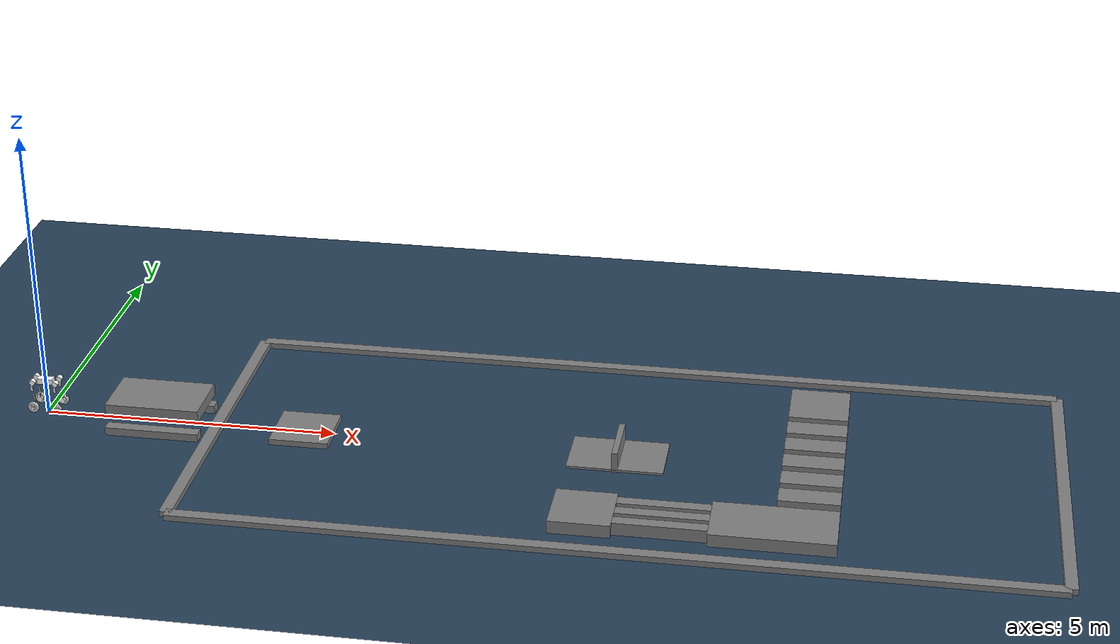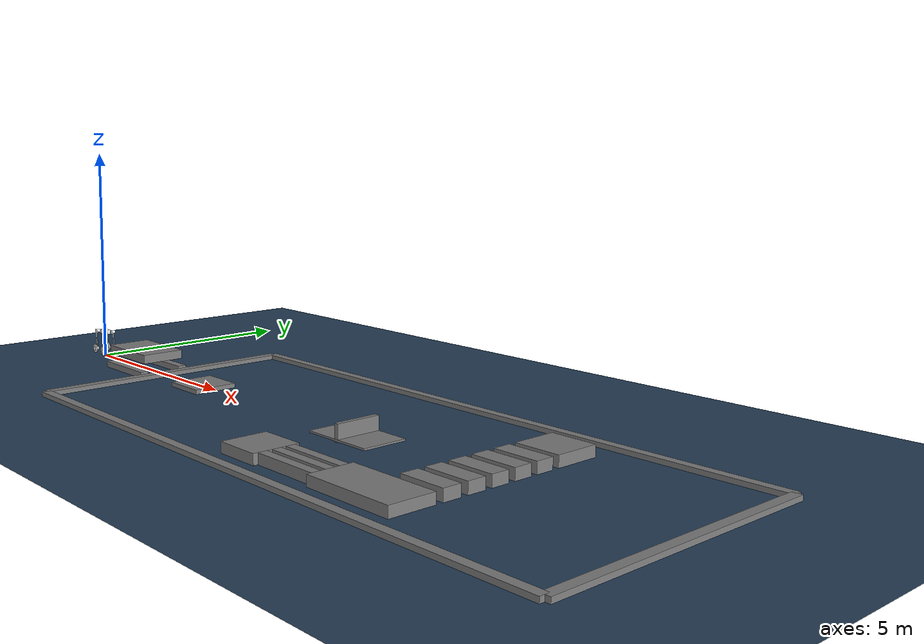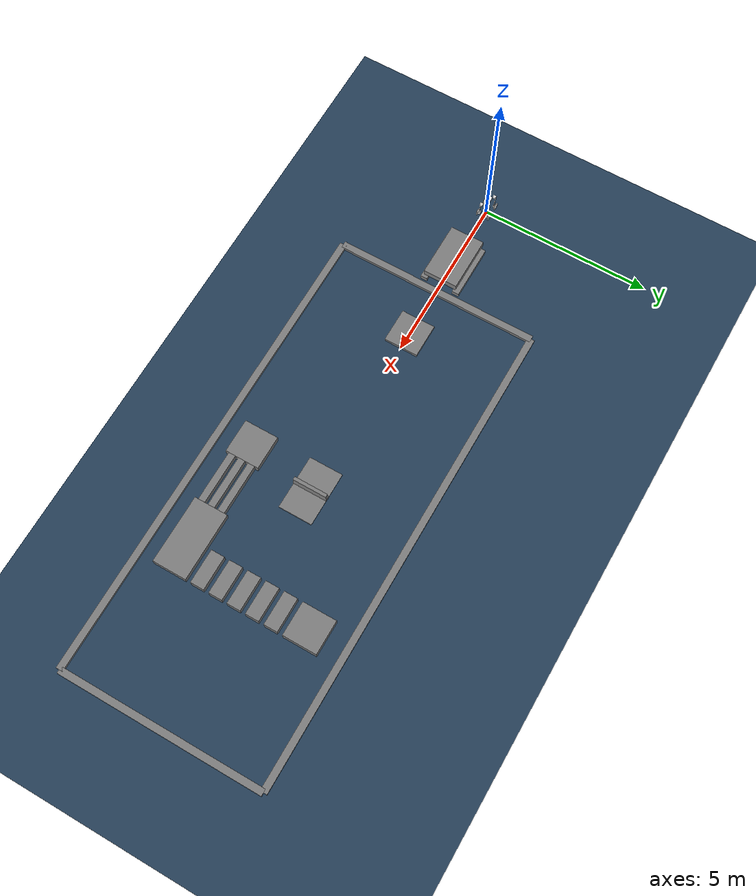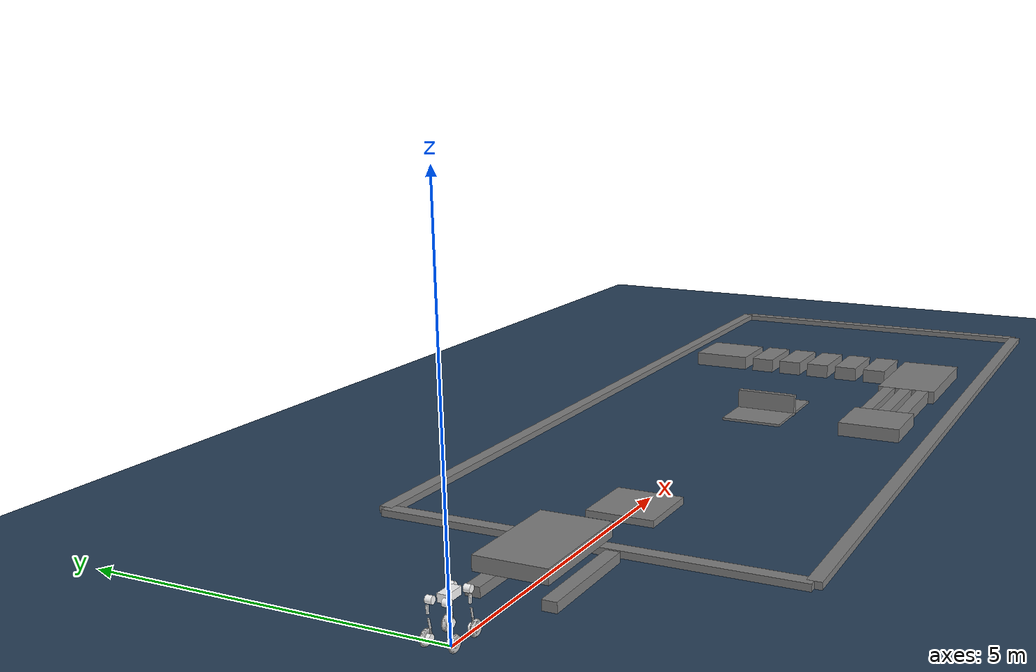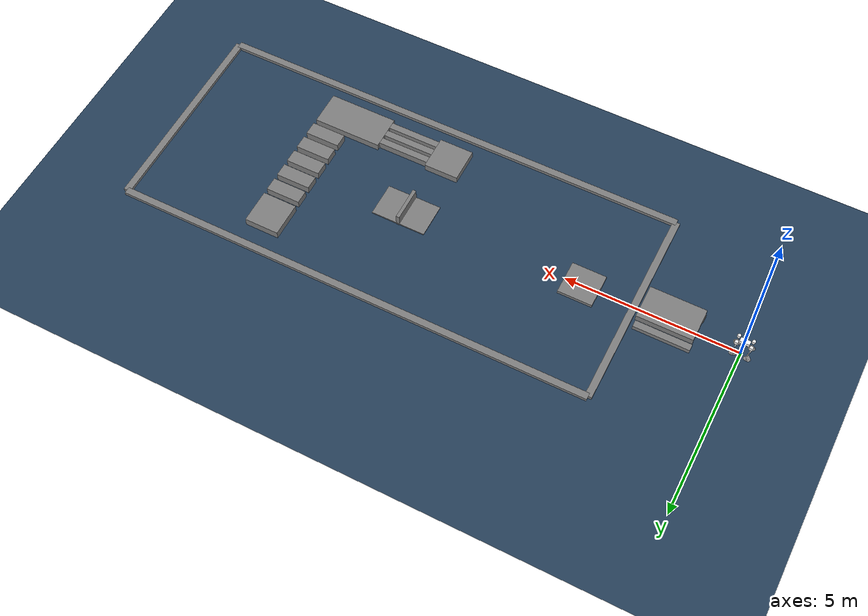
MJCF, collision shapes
<mujoco model="go2w scene">
  <include file="wheel_dog2.xml"/>

  <statistic center="0 0 0.1" extent="0.8"/>

  <visual>
    <headlight diffuse="0.6 0.6 0.6" ambient="0.3 0.3 0.3" specular="0 0 0"/>
    <rgba haze="0.15 0.25 0.35 1"/>
    <global azimuth="-130" elevation="-20"/>
  </visual>

  <asset>
    <texture type="skybox" builtin="gradient" rgb1="0.3 0.5 0.7" rgb2="0 0 0" width="512" height="3072"/>
    <texture type="2d" name="groundplane" builtin="checker" mark="edge" rgb1="0.2 0.3 0.4" rgb2="0.1 0.2 0.3"
      markrgb="0.8 0.8 0.8" width="300" height="300"/>
    <material name="groundplane" texture="groundplane" texuniform="true" texrepeat="5 5" reflectance="0.2"/>
  </asset>

  <worldbody>
    <light pos="0 0 1.5" dir="0 0 -1" directional="true"/>
    <geom name="floor" size="0 0 0.05" type="plane" material="groundplane"/>

    <geom pos="2 0.5 0.02" type="box"  size="0.8 0.1 0.1" quat="1.0 0 0 0"/>
    <geom pos="2 0 0.4" type="box"  size="0.8 0.5 0.1" quat="1.0 0 0 0"/>
    <geom pos="2 -0.5 0.02" type="box"  size="0.8 0.1 0.1" quat="1.0 0 0 0"/>
        <geom pos="10 3 0.04" type="box"  size=" 7 0.1 0.05" quat="1.0 0 0 0"/>
    <geom pos="10 -3 0.04" type="box"  size=" 7 0.1 0.05" quat="1.0 0 0 0"/>
    <geom pos="3 0 0.04" type="box"  size=" 0.1 3 0.05" quat="1.0 0 0 0"/>
    <geom pos="17 0 0.04" type="box"  size=" 0.1 3 0.05" quat="1.0 0 0 0"/>
    <!--启动区 -->
    <geom pos="4.5 0 0.04" type="box"  size=" 0.5 0.5 0.05" quat="1.0 0 0 0"/>
    <!-- 斜坡 -->
    <geom pos="9.5 -2 0" type="box"  size=" 0.5 0.5 0.2" quat="1.0 0 0 0"/>
    <geom pos="10.75 -1.7 0" type="box"  size=" 0.75 0.1 0.2" quat="1.0 0 0 0"/>
    <geom pos="10.75 -2 0" type="box"  size=" 0.75 0.1 0.2" quat="1.0 0 0 0"/>
    <geom pos="10.75 -2.3 0" type="box"  size=" 0.75 0.1 0.2" quat="1.0 0 0 0"/>
    <geom pos="12.5 -2 0" type="box"  size=" 1 0.5 0.2" quat="1.0 0 0 0"/>

    <geom pos="13 -1.15 0.02" type="box"  size="0.5 0.2 0.2" quat="1.0 0 0 0"/>
    <geom pos="13 -0.6 0.02" type="box"  size="0.5 0.2 0.2" quat="1.0 0 0 0"/>
    <geom pos="13 -0.05 0.02" type="box"  size="0.5 0.2 0.2" quat="1.0 0 0 0"/>
    <geom pos="13 0.5 0.02" type="box"  size="0.5 0.2 0.2" quat="1.0 0 0 0"/>
    <geom pos="13 1.05 0.02" type="box"  size="0.5 0.2 0.2" quat="1.0 0 0 0"/>

    <geom pos="13 1.9 0.02" type="box"  size="0.5 0.5 0.2" quat="1.0 0 0 0"/>
        <!-- 高墙 -->
    <geom pos="9.8 0 0.02" type="box"  size="0.8 0.5 0.02" quat="1.0 0 0 0"/>
    <geom pos="9.8 0 0.02" type="box"  size="0.05 0.5 0.32" quat="1.0 0 0 0"/>
  </worldbody>
</mujoco>

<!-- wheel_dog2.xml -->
<mujoco model="wheel_dog2">
  <compiler angle="radian" meshdir="assets" autolimits="true" />

  <size njmax="500" nconmax="100" />
  <option cone="elliptic" impratio="100" />

  <default>
    <default class="go2">
      <geom friction="0.4" margin="0.001" condim="1" />
      <joint axis="0 1 0" damping="0.1" armature="0.01" frictionloss="0.2" />
      <motor ctrlrange="-23.7 23.7" />
      <default class="abduction">
        <joint axis="1 0 0" range="-1 1" />
      </default>
      <default class="hip">
        <default class="front_hip">
        <joint range="-1.5 2.5" />
        </default>
        <default class="back_hip">
          <joint range="-0.5236 4.5379" />
        </default>
      </default>
      <default class="knee">
        <joint range="-2.5 -0.8" />
        <motor ctrlrange="-45.43 45.43" />
      </default>
      <default class="visual">
        <geom type="mesh" contype="0" conaffinity="0" group="2" />
      </default>
      <default class="collision">
        <geom group="3" />
        <default class="foot">
          <geom size="0.022" pos="-0.002 0 -0.2264" priority="1" condim="6"
            friction="0.8 0.02 0.01" />
        </default>
      </default>
    </default>
  </default>

  <asset>
    <mesh name="base" file="base.STL" />
    <mesh name="FL_hip" file="FL_hip.STL" />
    <mesh name="FL_thigh" file="FL_thigh.STL" />
    <mesh name="FL_calf" file="FL_calf.STL" />
    <mesh name="FL_foot_motor" file="FL_foot_motor.STL" />
    <mesh name="FL_foot" file="FL_foot.STL" />
    <mesh name="FR_hip" file="FR_hip.STL" />
    <mesh name="FR_thigh" file="FR_thigh.STL" />
    <mesh name="FR_calf" file="FR_calf.STL" />
    <mesh name="FR_foot_motor" file="FR_foot_motor.STL" />
    <mesh name="FR_foot" file="FR_foot.STL" />
    <mesh name="RL_hip" file="RL_hip.STL" />
    <mesh name="RL_thigh" file="RL_thigh.STL" />
    <mesh name="RL_calf" file="RL_calf.STL" />
    <mesh name="RL_foot_motor" file="RL_foot_motor.STL" />
    <mesh name="RL_foot" file="RL_foot.STL" />
    <mesh name="RR_hip" file="RR_hip.STL" />
    <mesh name="RR_thigh" file="RR_thigh.STL" />
    <mesh name="RR_calf" file="RR_calf.STL" />
    <mesh name="RR_foot_motor" file="RR_foot_motor.STL" />
    <mesh name="RR_foot" file="RR_foot.STL" />
  </asset>

  <worldbody>
    <body name="base_link" pos="0 0 0.6" childclass="go2">
      <freejoint />

      <geom type="mesh" contype="0" conaffinity="0" group="1" density="0" rgba="1 1 1 1" mesh="base" />
      <geom size="0.135 0.063 0.05" type="box" rgba="1 1 1 1" />
      <site name="imu" pos="0 0 0" />

      <body name="FL_hip" pos="0.138 0.063 0">
        <inertial pos="0.0544564 -0.012223 -3.33186e-05" quat="0.48755 0.523329 0.477681 0.510139" mass="0.729266" diaginertia="0.000973667 0.000664566 0.000539767" />
        <joint name="FL_hip_joint" pos="0 0 0" axis="1 0 0" range="-1 1" actuatorfrcrange="-20 20" />
        <geom type="mesh" contype="0" conaffinity="0" group="1" density="0" rgba="1 1 1 1" mesh="FL_hip" />
        <geom size="0.046 0.04" pos="0.064 0.04 0" quat="0.707107 0.707107 0 0" type="cylinder" rgba="1 1 1 1" />
        <body name="FL_thigh" pos="0.064 0.0673 0">
          <inertial pos="-0.00209131 -0.0157512 -0.0357313" quat="0.708157 0.088053 -0.0563058 0.698276" mass="1.00589" diaginertia="0.00478391 0.00446675 0.000796341" />
          <joint name="FL_thigh_joint" pos="0 0 0" axis="0 1 0" range="-1.5 2.5" actuatorfrcrange="-20 20" />
          <geom type="mesh" contype="0" conaffinity="0" group="1" density="0" rgba="1 1 1 1" mesh="FL_thigh" />
          <geom size="0.05 0.01 0.015" pos="-0.015 0 -0.11" quat="0.707107 0 0.707107 0" type="box" rgba="1 1 1 1" />
          <body name="FL_calf" pos="0 0 -0.213">
            <inertial pos="0.00443998 4.56788e-05 -0.181418" quat="0.706944 0.0138593 0.0137442 0.707" mass="0.889504" diaginertia="0.00554436 0.00518748 0.000509097" />
            <joint name="FL_calf_joint" pos="0 0 0" axis="0 1 0" range="-2.5 -0.8" actuatorfrcrange="-20 20" />
            <geom type="mesh" contype="0" conaffinity="0" group="1" density="0" rgba="0.752941 0.752941 0.752941 1" mesh="FL_calf" />
            <geom size="0.012 0.06" pos="0.008 0 -0.06" quat="0.994493 0 -0.104807 0" type="cylinder" rgba="0.752941 0.752941 0.752941 1" />
            <geom size="0.011 0.0325" pos="0.02 0 -0.148" quat="0.999688 0 0.0249974 0" type="cylinder" />
            <geom size="0.0155 0.015" pos="0.00801333 0 -0.18745" quat="0.965093 0 0.261909 0" type="cylinder" />
            <geom type="mesh" contype="0" conaffinity="0" group="1" density="0" rgba="1 1 1 1" mesh="FL_foot_motor" />
            <geom size="0.05 0.025" pos="0 0 -0.2264" quat="0.707107 0.707107 0 0" type="cylinder" rgba="1 1 1 1" />
            <body name="FL_foot" pos="0 0 -0.226">
              <inertial pos="9.25955e-06 0.0433518 -8.54889e-05" quat="0.707107 0 0 0.707107" mass="0.54" diaginertia="0.002112 0.001185 0.001185" />
              <joint name="FL_foot_joint" pos="0 0 0" axis="0 1 0" actuatorfrcrange="-20 20" />
              <geom type="mesh" contype="0" conaffinity="0" group="1" density="0" rgba="0.752941 0.752941 0.752941 1" mesh="FL_foot" />
              <geom type="mesh" rgba="0.752941 0.752941 0.752941 1" mesh="FL_foot" />
            </body>
          </body>
        </body>
      </body>

      <body name="FR_hip" pos="0.138 -0.063 0">
        <inertial pos="0.0544564 0.012223 3.33186e-05" quat="0.493614 0.493614 0.506305 0.506305" mass="0.72926" diaginertia="0.000973279 0.000664 0.000539721" />
        <joint name="FR_hip_joint" pos="0 0 0" axis="1 0 0" range="-1 1" actuatorfrcrange="-20 20" />
        <geom type="mesh" contype="0" conaffinity="0" group="1" density="0" rgba="1 1 1 1" mesh="FR_hip" />
        <geom size="0.046 0.04" pos="0.064 -0.04 0" quat="0.707107 0.707107 0 0" type="cylinder" rgba="1 1 1 1" />
        <body name="FR_thigh" pos="0.064 -0.0673 0">
          <inertial pos="-0.00179872 0.0157557 -0.0361369" quat="0.705452 -0.0323703 0.061048 0.705381" mass="1.02069" diaginertia="0.00492032 0.00459719 0.000814487" />
          <joint name="FR_thigh_joint" pos="0 0 0" axis="0 1 0" range="-1.5 2.5" actuatorfrcrange="-20 20" />
          <geom type="mesh" contype="0" conaffinity="0" group="1" density="0" rgba="1 1 1 1" mesh="FR_thigh" />
          <geom size="0.05 0.01 0.015" pos="-0.015 0 -0.11" quat="0.707107 0 0.707107 0" type="box" rgba="1 1 1 1" />
          <body name="FR_calf" pos="0 0 -0.213">
            <inertial pos="0.00450324 -4.5692e-05 -0.181444" quat="0.707003 0.0135557 0.0136706 0.706948" mass="0.889504" diaginertia="0.00554593 0.00518937 0.000508783" />
            <joint name="FR_calf_joint" pos="0 0 0" axis="0 1 0" range="-2.5 -0.8" actuatorfrcrange="-20 20" />
            <geom type="mesh" contype="0" conaffinity="0" group="1" density="0" rgba="0.752941 0.752941 0.752941 1" mesh="FR_calf" />
            <geom size="0.012 0.06" pos="0.008 0 -0.06" quat="0.994493 0 -0.104807 0" type="cylinder" rgba="0.752941 0.752941 0.752941 1" />
            <geom size="0.011 0.0325" pos="0.02 0 -0.148" quat="0.999688 0 0.0249974 0" type="cylinder" />
            <geom size="0.0155 0.015" pos="0.00801333 0 -0.18745" quat="0.965093 0 0.261909 0" type="cylinder" />
            <geom type="mesh" contype="0" conaffinity="0" group="1" density="0" rgba="1 1 1 1" mesh="FR_foot_motor" />
            <geom size="0.05 0.025" pos="0 0 -0.2264" quat="0.707107 0.707107 0 0" type="cylinder" rgba="1 1 1 1" />
            <body name="FR_foot" pos="0 -0.0365 -0.226">
              <inertial pos="-2.87493e-07 -0.00685222 -8.59602e-05" quat="0.707107 0 0 0.707107" mass="0.54" diaginertia="0.002112 0.001185 0.001185" />
              <joint name="FR_foot_joint" pos="0 0 0" axis="0 1 0" actuatorfrcrange="-20 20" />
              <geom type="mesh" contype="0" conaffinity="0" group="1" density="0" rgba="0.752941 0.752941 0.752941 1" mesh="FR_foot" />
              <geom type="mesh" rgba="0.752941 0.752941 0.752941 1" mesh="FR_foot" />
            </body>
          </body>
        </body>
      </body>

      <body name="RL_hip" pos="-0.136 0.063 0">
        <inertial pos="-0.0544564 -0.012223 3.33186e-05" quat="0.492745 0.494482 0.505559 0.507051" mass="0.729266" diaginertia="0.000973282 0.000663997 0.000539721" />
        <joint name="RL_hip_joint" pos="0 0 0" axis="1 0 0" range="-1 1" actuatorfrcrange="-20 20" />
        <geom type="mesh" contype="0" conaffinity="0" group="1" density="0" rgba="1 1 1 1" mesh="RL_hip" />
        <geom size="0.046 0.04" pos="-0.064 0.04 0" quat="0.707107 0.707107 0 0" type="cylinder" rgba="1 1 1 1" />
        <body name="RL_thigh" pos="-0.064 0.0673 0">
          <inertial pos="-0.00209131 -0.0157512 -0.0357313" quat="0.711046 0.0625847 -0.0312494 0.699657" mass="1.00589" diaginertia="0.00478432 0.00446672 0.000795967" />
          <joint name="RL_thigh_joint" pos="0 0 0" axis="0 1 0" range="-1.5 2.5" actuatorfrcrange="-20 20" />
          <geom type="mesh" contype="0" conaffinity="0" group="1" density="0" rgba="1 1 1 1" mesh="RL_thigh" />
          <geom size="0.05 0.01 0.015" pos="-0.015 0 -0.11" quat="0.707107 0 0.707107 0" type="box" rgba="1 1 1 1" />
          <body name="RL_calf" pos="0 0 -0.213">
            <inertial pos="0.00443998 4.56788e-05 -0.181418" quat="0.705954 0.013876 0.0137277 0.707989" mass="0.889504" diaginertia="0.00554436 0.00518747 0.000509097" />
            <joint name="RL_calf_joint" pos="0 0 0" axis="0 1 0" range="-2.5 -0.8" actuatorfrcrange="-20 20" />
            <geom type="mesh" contype="0" conaffinity="0" group="1" density="0" rgba="0.752941 0.752941 0.752941 1" mesh="RL_calf" />
            <geom size="0.013 0.06" pos="0.008 0 -0.06" quat="0.994493 0 -0.104807 0" type="cylinder" rgba="0.752941 0.752941 0.752941 1" />
            <geom size="0.011 0.0325" pos="0.02 0 -0.148" quat="0.999688 0 0.0249974 0" type="cylinder" />
            <geom size="0.0155 0.015" pos="0.00801333 0 -0.18745" quat="0.965093 0 0.261909 0" type="cylinder" />
            <geom type="mesh" contype="0" conaffinity="0" group="1" density="0" rgba="1 1 1 1" mesh="RL_foot_motor" />
            <geom size="0.05 0.025" pos="0 0 -0.2264" quat="0.707107 0.707107 0 0" type="cylinder" rgba="1 1 1 1" />
            <body name="RL_foot" pos="0 0.0365 -0.226">
              <inertial pos="-7.22376e-05 0.0068524 -4.73929e-05" quat="0.707107 0 0 0.707107" mass="0.54" diaginertia="0.002112 0.001185 0.001185" />
              <joint name="RL_foot_joint" pos="0 0 0" axis="0 1 0" actuatorfrcrange="-20 20" />
              <geom type="mesh" contype="0" conaffinity="0" group="1" density="0" rgba="0.752941 0.752941 0.752941 1" mesh="RL_foot" />
              <geom type="mesh" rgba="0.752941 0.752941 0.752941 1" mesh="RL_foot" />
            </body>
          </body>
        </body>
      </body>

      <body name="RR_hip" pos="-0.136 -0.063 0">
        <inertial pos="-0.0544564 0.012223 -3.33186e-05" quat="0.48755 0.523329 0.477681 0.510139" mass="0.729266" diaginertia="0.000973667 0.000664566 0.000539767" />
        <joint name="RR_hip_joint" pos="0 0 0" axis="1 0 0" range="-1 1" actuatorfrcrange="-20 20" />
        <geom type="mesh" contype="0" conaffinity="0" group="1" density="0" rgba="1 1 1 1" mesh="RR_hip" />
        <geom size="0.046 0.04" pos="-0.064 -0.04 0" quat="0.707107 0.707107 0 0" type="cylinder" rgba="1 1 1 1" />
        <body name="RR_thigh" pos="-0.064 -0.0673 0">
          <inertial pos="-0.00179872 0.0157557 -0.0361369" quat="0.705378 -0.0324105 0.0610056 0.705457" mass="1.02069" diaginertia="0.00492032 0.00459715 0.000814527" />
          <joint name="RR_thigh_joint" pos="0 0 0" axis="0 1 0" range="-1.5 2.5" actuatorfrcrange="-20 20" />
          <geom type="mesh" contype="0" conaffinity="0" group="1" density="0" rgba="1 1 1 1" mesh="RR_thigh" />
          <geom size="0.05 0.01 0.015" pos="-0.015 0 -0.11" quat="0.707107 0 0.707107 0" type="box" rgba="1 1 1 1" />
          <body name="RR_calf" pos="0 0 -0.213">
            <inertial pos="0.00450324 -4.5692e-05 -0.181444" quat="0.707003 0.0135557 0.0136706 0.706948" mass="0.889504" diaginertia="0.00554593 0.00518937 0.000508783" />
            <joint name="RR_calf_joint" pos="0 0 0" axis="0 1 0" range="-2.5 -0.8" actuatorfrcrange="-20 20" />
            <geom type="mesh" contype="0" conaffinity="0" group="1" density="0" rgba="0.752941 0.752941 0.752941 1" mesh="RR_calf" />
            <geom size="0.012 0.06" pos="0.008 0 -0.06" quat="0.994493 0 -0.104807 0" type="cylinder" rgba="0.752941 0.752941 0.752941 1" />
            <geom size="0.011 0.0325" pos="0.02 0 -0.148" quat="0.999688 0 0.0249974 0" type="cylinder" />
            <geom size="0.0155 0.015" pos="0.00801333 0 -0.18745" quat="0.965093 0 0.261909 0" type="cylinder" />
            <geom type="mesh" contype="0" conaffinity="0" group="1" density="0" rgba="1 1 1 1" mesh="RR_foot_motor" />
            <geom size="0.05 0.025" pos="0 0 -0.2264" quat="0.707107 0.707107 0 0" type="cylinder" rgba="1 1 1 1" />
            <body name="RR_foot" pos="0 0 -0.226">
              <inertial pos="-1.4739e-05 -0.0433523 -8.4682e-05" quat="0.707107 0 0 0.707107" mass="0.54" diaginertia="0.002112 0.001185 0.001185" />
              <joint name="RR_foot_joint" pos="0 0 0" axis="0 1 0" actuatorfrcrange="-20 20" />
              <geom type="mesh" contype="0" conaffinity="0" group="1" density="0" rgba="0.752941 0.752941 0.752941 1" mesh="RR_foot" />
              <geom type="mesh" rgba="0.752941 0.752941 0.752941 1" mesh="RR_foot" />
            </body>
          </body>
        </body>
      </body>
    </body>
  </worldbody>

  <actuator>
    <motor class="abduction" name="FL_hip" joint="FL_hip_joint" />
    <motor class="hip" name="FL_thigh" joint="FL_thigh_joint" />
    <motor class="knee" name="FL_calf" joint="FL_calf_joint" />
    <motor ctrlrange="-15 15" name="FL_foot" joint="FL_foot_joint" />

    <motor class="abduction" name="FR_hip" joint="FR_hip_joint" />
    <motor class="hip" name="FR_thigh" joint="FR_thigh_joint" />
    <motor class="knee" name="FR_calf" joint="FR_calf_joint" />
    <motor ctrlrange="-15 15" name="FR_foot" joint="FR_foot_joint" />

    <motor class="abduction" name="RL_hip" joint="RL_hip_joint" />
    <motor class="hip" name="RL_thigh" joint="RL_thigh_joint" />
    <motor class="knee" name="RL_calf" joint="RL_calf_joint" />
    <motor ctrlrange="-15 15" name="RL_foot" joint="RL_foot_joint" />

    <motor class="abduction" name="RR_hip" joint="RR_hip_joint" />
    <motor class="hip" name="RR_thigh" joint="RR_thigh_joint" />
    <motor class="knee" name="RR_calf" joint="RR_calf_joint" />
    <motor ctrlrange="-15 15" name="RR_foot" joint="RR_foot_joint" />
  </actuator>

  <sensor>
    <jointpos name="FR_hip_pos" joint="FR_hip_joint" />
    <jointpos name="FR_thigh_pos" joint="FR_thigh_joint" />
    <jointpos name="FR_calf_pos" joint="FR_calf_joint" />

    <jointpos name="FL_hip_pos" joint="FL_hip_joint" />
    <jointpos name="FL_thigh_pos" joint="FL_thigh_joint" />
    <jointpos name="FL_calf_pos" joint="FL_calf_joint" />

    <jointpos name="RR_hip_pos" joint="RR_hip_joint" />
    <jointpos name="RR_thigh_pos" joint="RR_thigh_joint" />
    <jointpos name="RR_calf_pos" joint="RR_calf_joint" />

    <jointpos name="RL_hip_pos" joint="RL_hip_joint" />
    <jointpos name="RL_thigh_pos" joint="RL_thigh_joint" />
    <jointpos name="RL_calf_pos" joint="RL_calf_joint" />

    <jointpos name="FR_foot_pos" joint="FR_foot_joint" />
    <jointpos name="FL_foot_pos" joint="FL_foot_joint" />
    <jointpos name="RR_foot_pos" joint="RR_foot_joint" />
    <jointpos name="RL_foot_pos" joint="RL_foot_joint" />

    <jointvel name="FR_hip_vel" joint="FR_hip_joint" />
    <jointvel name="FR_thigh_vel" joint="FR_thigh_joint" />
    <jointvel name="FR_calf_vel" joint="FR_calf_joint" />
    <jointvel name="FL_hip_vel" joint="FL_hip_joint" />
    <jointvel name="FL_thigh_vel" joint="FL_thigh_joint" />
    <jointvel name="FL_calf_vel" joint="FL_calf_joint" />
    <jointvel name="RR_hip_vel" joint="RR_hip_joint" />
    <jointvel name="RR_thigh_vel" joint="RR_thigh_joint" />
    <jointvel name="RR_calf_vel" joint="RR_calf_joint" />
    <jointvel name="RL_hip_vel" joint="RL_hip_joint" />
    <jointvel name="RL_thigh_vel" joint="RL_thigh_joint" />
    <jointvel name="RL_calf_vel" joint="RL_calf_joint" />

    <jointvel name="FR_foot_vel" joint="FR_foot_joint" noise="0.0" />
    <jointvel name="FL_foot_vel" joint="FL_foot_joint" noise="0.0" />
    <jointvel name="RR_foot_vel" joint="RR_foot_joint" noise="0.0" />
    <jointvel name="RL_foot_vel" joint="RL_foot_joint" noise="0.0" />

    <jointactuatorfrc name="FR_hip_torque" joint="FR_hip_joint" noise="0.01" />
    <jointactuatorfrc name="FR_thigh_torque" joint="FR_thigh_joint" noise="0.01" />
    <jointactuatorfrc name="FR_calf_torque" joint="FR_calf_joint" noise="0.01" />
    <jointactuatorfrc name="FL_hip_torque" joint="FL_hip_joint" noise="0.01" />
    <jointactuatorfrc name="FL_thigh_torque" joint="FL_thigh_joint" noise="0.01" />
    <jointactuatorfrc name="FL_calf_torque" joint="FL_calf_joint" noise="0.01" />
    <jointactuatorfrc name="RR_hip_torque" joint="RR_hip_joint" noise="0.01" />
    <jointactuatorfrc name="RR_thigh_torque" joint="RR_thigh_joint" noise="0.01" />
    <jointactuatorfrc name="RR_calf_torque" joint="RR_calf_joint" noise="0.01" />
    <jointactuatorfrc name="RL_hip_torque" joint="RL_hip_joint" noise="0.01" />
    <jointactuatorfrc name="RL_thigh_torque" joint="RL_thigh_joint" noise="0.01" />
    <jointactuatorfrc name="RL_calf_torque" joint="RL_calf_joint" noise="0.01" />

    <jointactuatorfrc name="FR_foot_torque" joint="FR_foot_joint" />
    <jointactuatorfrc name="FL_foot_torque" joint="FL_foot_joint" />
    <jointactuatorfrc name="RR_foot_torque" joint="RR_foot_joint" />
    <jointactuatorfrc name="RL_foot_torque" joint="RL_foot_joint" />

    <framequat name="orientation" objtype="site" objname="imu" noise="0.0" />
    <framelinvel name="base_lin_vel" objtype="site" objname="imu" />
    <gyro name="angular-velocity" site="imu" noise="0.0" />
    <accelerometer name="linear-acceleration" site="imu" />

    <framepos name="frame_pos" objtype="site" objname="imu" />
    <framelinvel name="frame_vel" objtype="site" objname="imu" />
  </sensor>
</mujoco>
